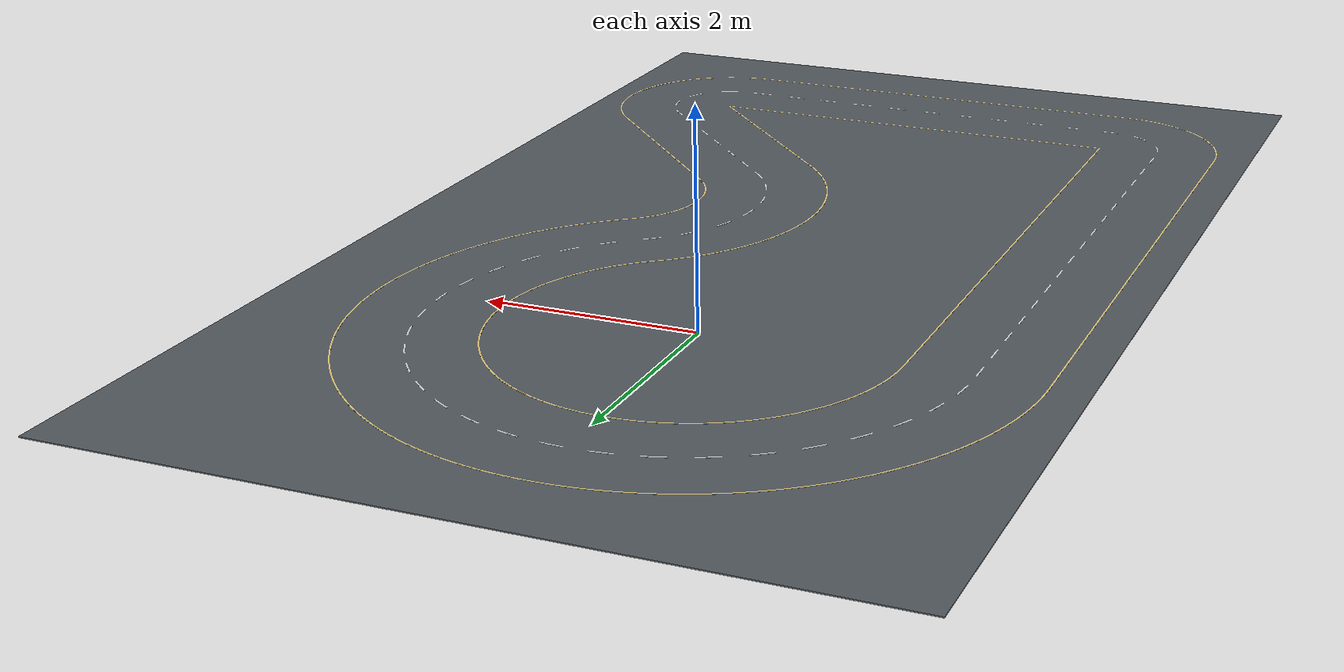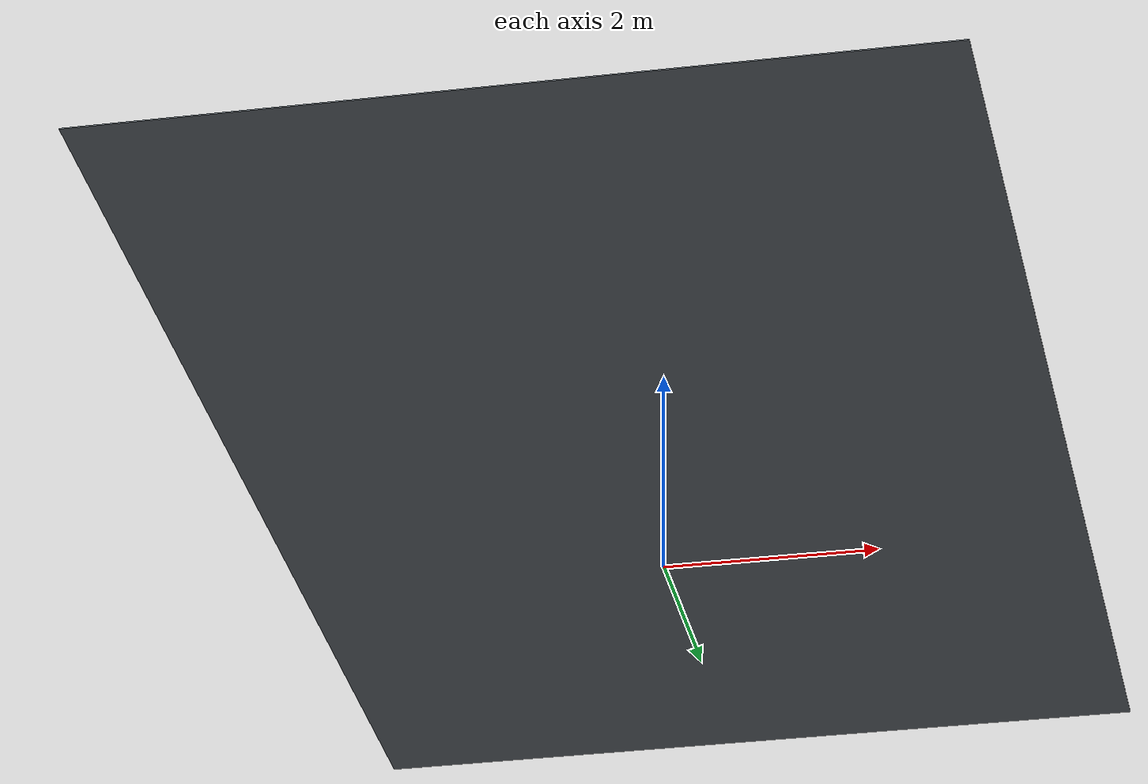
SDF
<?xml version="1.0" ?>
<sdf version="1.5">
  <model name="Racetrack">

    <link name="link">
      <pose>0.0 0.0 0.0 0 0 0</pose>
      <collision name="collision">
        <pose>0.254 -2.286 -0.005</pose>
        <geometry>
          <box>
            <size>7.3152 12.192 0.01</size>
          </box>
        </geometry>
      </collision>
      <visual name="visual">
        <geometry>
          <mesh><uri>model://Racetrack/meshes/Racetrack.dae</uri></mesh>
        </geometry>
      </visual>
    </link>

  </model>
</sdf>
